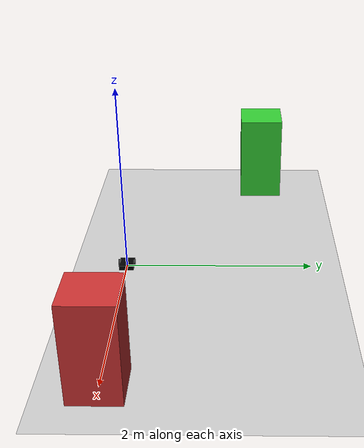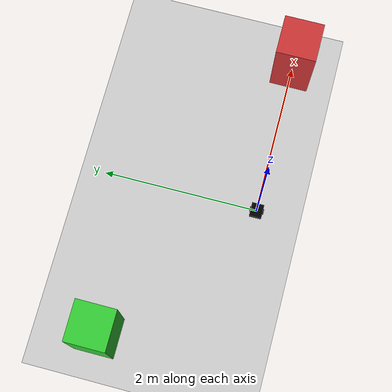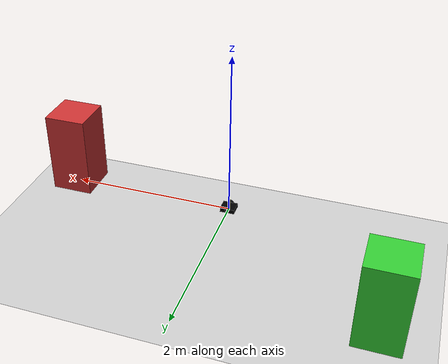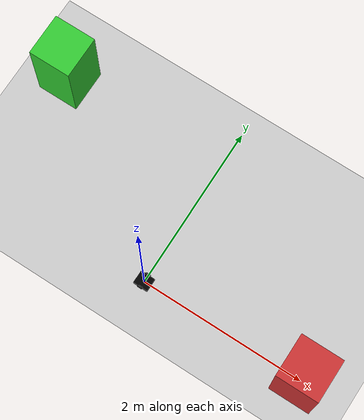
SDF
<?xml version="1.0"?>
<sdf version="1.6">
  <world name="default">
    <!-- Light source -->
    <light type="directional" name="sun">
      <cast_shadows>true</cast_shadows>
      <pose>0 0 10 0 0 0</pose>
      <diffuse>0.8 0.8 0.8 1</diffuse>
      <specular>0.2 0.2 0.2 1</specular>
      <attenuation>
        <range>1000</range>
        <constant>0.9</constant>
        <linear>0.01</linear>
        <quadratic>0.001</quadratic>
      </attenuation>
      <direction>-0.5 0.1 -0.9</direction>
    </light>

    <!-- Ground plane -->
    <model name="ground_plane">
      <static>true</static>
      <link name="link">
        <collision name="collision">
          <geometry>
            <plane>
              <normal>0 0 1</normal>
              <size>100 100</size>
            </plane>
          </geometry>
        </collision>
        <visual name="visual">
          <geometry>
            <plane>
              <normal>0 0 1</normal>
              <size>100 100</size>
            </plane>
          </geometry>
          <material>
            <ambient>0.8 0.8 0.8 1</ambient>
            <diffuse>0.8 0.8 0.8 1</diffuse>
            <specular>0.8 0.8 0.8 1</specular>
          </material>
        </visual>
      </link>
    </model>

    <!-- TurtleBot3 with depth camera -->
    <model name="turtlebot3_waffle">
      <static>false</static>
      <pose>0 0 0.01 0 0 0</pose>

      <!-- Base link -->
      <link name="base_link">
        <inertial>
          <mass>1.0</mass>
          <inertia>
            <ixx>0.001</ixx>
            <iyy>0.001</iyy>
            <izz>0.001</izz>
          </inertia>
        </inertial>

        <!-- Base visual -->
        <visual name="base_visual">
          <geometry>
            <box>
              <size>0.178 0.156 0.077</size>
            </box>
          </geometry>
          <material>
            <ambient>0.0 0.0 0.0 1.0</ambient>
            <diffuse>0.0 0.0 0.0 1.0</diffuse>
            <specular>0.0 0.0 0.0 1.0</specular>
          </material>
        </visual>

        <!-- Base collision -->
        <collision name="base_collision">
          <geometry>
            <box>
              <size>0.178 0.156 0.077</size>
            </box>
          </geometry>
        </collision>

        <!-- Depth camera -->
        <sensor name="depth_camera" type="depth">
          <pose>0.073 0 0.084 0 0 0</pose>
          <camera>
            <horizontal_fov>1.02974</horizontal_fov>
            <image>
              <width>640</width>
              <height>480</height>
              <format>R8G8B8</format>
            </image>
            <clip>
              <near>0.1</near>
              <far>10</far>
            </clip>
          </camera>
          <always_on>1</always_on>
          <update_rate>10</update_rate>
          <visualize>true</visualize>
          <plugin
            filename="libignition-gazebo-sensors-system.so"
            name="ignition::gazebo::systems::Sensors">
            <render_engine>ogre2</render_engine>
          </plugin>
        </sensor>

        <!-- LiDAR sensor -->
        <sensor name="lidar" type="lidar">
          <pose>0 0 0.15 0 0 0</pose>
          <lidar>
            <scan>
              <horizontal>
                <samples>360</samples>
                <resolution>1</resolution>
                <min_angle>-3.14159</min_angle>
                <max_angle>3.14159</max_angle>
              </horizontal>
            </scan>
            <range>
              <min>0.12</min>
              <max>3.5</max>
              <resolution>0.015</resolution>
            </range>
          </lidar>
          <always_on>1</always_on>
          <update_rate>10</update_rate>
          <visualize>true</visualize>
          <plugin
            filename="libignition-gazebo-sensors-system.so"
            name="ignition::gazebo::systems::Sensors">
            <render_engine>ogre2</render_engine>
          </plugin>
        </sensor>
      </link>

      <!-- Left wheel -->
      <link name="left_wheel">
        <pose>0 0.08 0.033 -1.5707 0 0</pose>
        <inertial>
          <mass>0.1</mass>
          <inertia>
            <ixx>0.001</ixx>
            <iyy>0.001</iyy>
            <izz>0.001</izz>
          </inertia>
        </inertial>

        <visual name="left_wheel_visual">
          <geometry>
            <cylinder>
              <radius>0.033</radius>
              <length>0.018</length>
            </cylinder>
          </geometry>
          <material>
            <ambient>0.2 0.2 0.2 1.0</ambient>
            <diffuse>0.2 0.2 0.2 1.0</diffuse>
          </material>
        </visual>

        <collision name="left_wheel_collision">
          <geometry>
            <cylinder>
              <radius>0.033</radius>
              <length>0.018</length>
            </cylinder>
          </geometry>
        </collision>
      </link>

      <!-- Right wheel -->
      <link name="right_wheel">
        <pose>0 -0.08 0.033 -1.5707 0 0</pose>
        <inertial>
          <mass>0.1</mass>
          <inertia>
            <ixx>0.001</ixx>
            <iyy>0.001</iyy>
            <izz>0.001</izz>
          </inertia>
        </inertial>

        <visual name="right_wheel_visual">
          <geometry>
            <cylinder>
              <radius>0.033</radius>
              <length>0.018</length>
            </cylinder>
          </geometry>
          <material>
            <ambient>0.2 0.2 0.2 1.0</ambient>
            <diffuse>0.2 0.2 0.2 1.0</diffuse>
          </material>
        </visual>

        <collision name="right_wheel_collision">
          <geometry>
            <cylinder>
              <radius>0.033</radius>
              <length>0.018</length>
            </cylinder>
          </geometry>
        </collision>
      </link>

      <!-- Left wheel joint -->
      <joint name="left_wheel_joint" type="revolute">
        <parent>base_link</parent>
        <child>left_wheel</child>
        <axis>
          <xyz>0 0 1</xyz>
        </axis>
      </joint>

      <!-- Right wheel joint -->
      <joint name="right_wheel_joint" type="revolute">
        <parent>base_link</parent>
        <child>right_wheel</child>
        <axis>
          <xyz>0 0 1</xyz>
        </axis>
      </joint>

      <!-- Differential drive plugin -->
      <plugin
        filename="libignition-gazebo-diff-drive-system.so"
        name="ignition::gazebo::systems::DiffDrive">
        <left_joint>left_wheel_joint</left_joint>
        <right_joint>right_wheel_joint</right_joint>
        <wheel_separation>0.16</wheel_separation>
        <wheel_radius>0.033</wheel_radius>
        <odom_publish_frequency>30</odom_publish_frequency>
        <topic>/cmd_vel</topic>
        <odom_topic>/odom</odom_topic>
        <frame_id>odom</frame_id>
        <child_frame_id>base_link</child_frame_id>
      </plugin>
    </model>

    <!-- Simple obstacles for navigation -->
    <model name="obstacle1">
      <static>true</static>
      <pose>2 0 0.5 0 0 0</pose>
      <link name="link">
        <visual name="visual">
          <geometry>
            <box>
              <size>0.5 0.5 1</size>
            </box>
          </geometry>
          <material>
            <ambient>0.8 0.2 0.2 1</ambient>
            <diffuse>0.8 0.2 0.2 1</diffuse>
          </material>
        </visual>
        <collision name="collision">
          <geometry>
            <box>
              <size>0.5 0.5 1</size>
            </box>
          </geometry>
        </collision>
      </link>
    </model>

    <model name="obstacle2">
      <static>true</static>
      <pose>-2 1.5 0.5 0 0 0</pose>
      <link name="link">
        <visual name="visual">
          <geometry>
            <box>
              <size>0.5 0.5 1</size>
            </box>
          </geometry>
          <material>
            <ambient>0.2 0.8 0.2 1</ambient>
            <diffuse>0.2 0.8 0.2 1</diffuse>
          </material>
        </visual>
        <collision name="collision">
          <geometry>
            <box>
              <size>0.5 0.5 1</size>
            </box>
          </geometry>
        </collision>
      </link>
    </model>

    <!-- Physics settings -->
    <physics name="default_physics" default="0" type="ode">
      <gravity>0 0 -9.8066</gravity>
      <ode>
        <solver>
          <type>quick</type>
          <iters>150</iters>
          <sor>1.3</sor>
        </solver>
        <constraints>
          <cfm>0.00001</cfm>
          <erp>0.2</erp>
          <contact_max_correcting_vel>1000</contact_max_correcting_vel>
          <contact_surface_layer>0.01</contact_surface_layer>
        </constraints>
      </ode>
      <max_step_size>0.004</max_step_size>
      <real_time_factor>1.0</real_time_factor>
      <real_time_update_rate>250</real_time_update_rate>
    </physics>
  </world>
</sdf>
